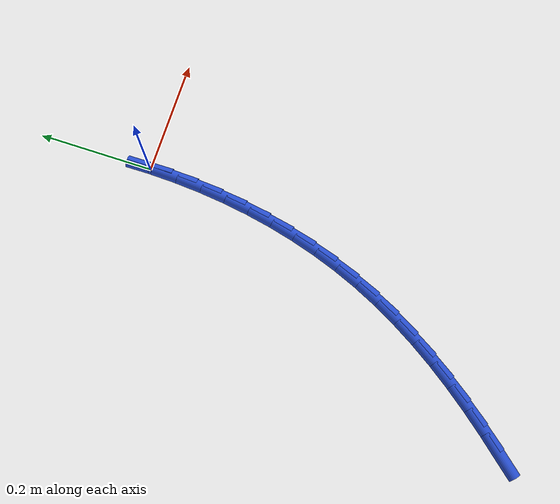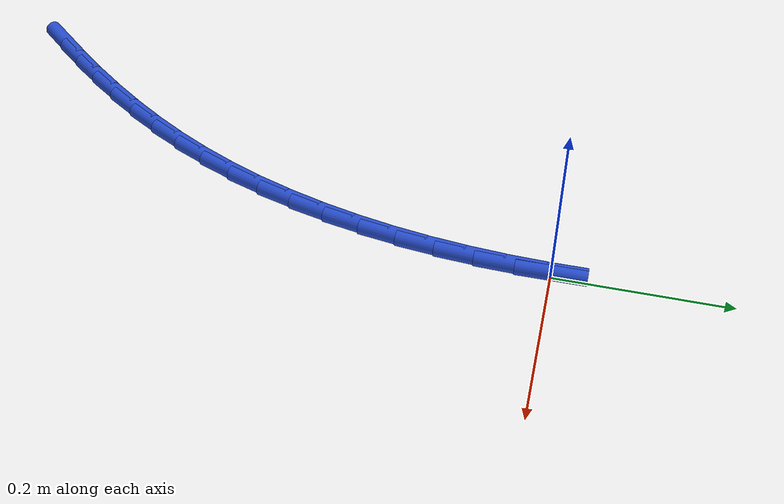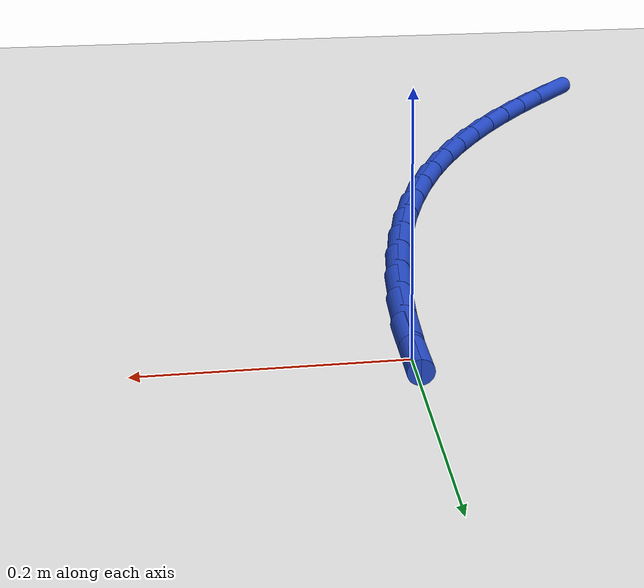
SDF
<sdf version="1.6">
 <world name="default">
  <model name="ground_plane">
   <static>1</static>
   <link name="link">
    <collision name="collision">
     <geometry><plane><normal>0 0 1</normal><size>100 100</size></plane></geometry>
     <surface><friction><ode><mu>100</mu><mu2>50</mu2></ode></friction></surface>
    </collision>
    <visual name="visual">
     <cast_shadows>0</cast_shadows>
     <geometry><plane><normal>0 0 1</normal><size>100 100</size></plane></geometry>
     <material>
      <script><uri>file://media/materials/scripts/gazebo.material</uri><name>Gazebo/WhiteGlow</name></script>
     </material>
    </visual>
   </link>
  </model>
  <model name="line">
   <link name="link_0">
    <pose>0.0 -1.5265566588595902e-16 0.01 0 1.57 -1.5642455888296136</pose>
    <collision name="collision">
     <geometry><cylinder><radius>0.01</radius><length>0.08</length></cylinder></geometry>
    </collision>
    <visual name="visual">
     <material>
      <script><name>Gazebo/Blue</name><uri>file://media/materials/scripts/gazebo.material</uri></script>
     </material>
     <geometry><cylinder><radius>0.01</radius><length>0.08</length></cylinder></geometry>
    </visual>
   </link>
   <link name="link_133">
    <pose>-0.27783959746165116 -0.6861012401727599 0.01 0 1.57 0.8540342159942773</pose>
    <collision name="collision">
     <geometry><cylinder><radius>0.01</radius><length>0.08</length></cylinder></geometry>
    </collision>
    <visual name="visual">
     <material>
      <script><name>Gazebo/Blue</name><uri>file://media/materials/scripts/gazebo.material</uri></script>
     </material>
     <geometry><cylinder><radius>0.01</radius><length>0.08</length></cylinder></geometry>
    </visual>
   </link>
   <link name="link_134">
    <pose>-0.24813306624117287 -0.6520089183360335 0.01 0 1.57 0.8821815100819124</pose>
    <collision name="collision">
     <geometry><cylinder><radius>0.01</radius><length>0.08</length></cylinder></geometry>
    </collision>
    <visual name="visual">
     <material>
      <script><name>Gazebo/Blue</name><uri>file://media/materials/scripts/gazebo.material</uri></script>
     </material>
     <geometry><cylinder><radius>0.01</radius><length>0.08</length></cylinder></geometry>
    </visual>
   </link>
   <link name="link_135">
    <pose>-0.21956404144341862 -0.6172960666490237 0.01 0 1.57 0.9140125216813902</pose>
    <collision name="collision">
     <geometry><cylinder><radius>0.01</radius><length>0.08</length></cylinder></geometry>
    </collision>
    <visual name="visual">
     <material>
      <script><name>Gazebo/Blue</name><uri>file://media/materials/scripts/gazebo.material</uri></script>
     </material>
     <geometry><cylinder><radius>0.01</radius><length>0.08</length></cylinder></geometry>
    </visual>
   </link>
   <link name="link_136">
    <pose>-0.19227535316683056 -0.5819005385605469 0.01 0 1.57 0.949613315065094</pose>
    <collision name="collision">
     <geometry><cylinder><radius>0.01</radius><length>0.08</length></cylinder></geometry>
    </collision>
    <visual name="visual">
     <material>
      <script><name>Gazebo/Blue</name><uri>file://media/materials/scripts/gazebo.material</uri></script>
     </material>
     <geometry><cylinder><radius>0.01</radius><length>0.08</length></cylinder></geometry>
    </visual>
   </link>
   <link name="link_137">
    <pose>-0.16640983150985256 -0.5457601875194211 0.01 0 1.57 0.9890408820293265</pose>
    <collision name="collision">
     <geometry><cylinder><radius>0.01</radius><length>0.08</length></cylinder></geometry>
    </collision>
    <visual name="visual">
     <material>
      <script><name>Gazebo/Blue</name><uri>file://media/materials/scripts/gazebo.material</uri></script>
     </material>
     <geometry><cylinder><radius>0.01</radius><length>0.08</length></cylinder></geometry>
    </visual>
   </link>
   <link name="link_138">
    <pose>-0.14211030657092819 -0.5088128669744647 0.01 0 1.57 1.0323071762035303</pose>
    <collision name="collision">
     <geometry><cylinder><radius>0.01</radius><length>0.08</length></cylinder></geometry>
    </collision>
    <visual name="visual">
     <material>
      <script><name>Gazebo/Blue</name><uri>file://media/materials/scripts/gazebo.material</uri></script>
     </material>
     <geometry><cylinder><radius>0.01</radius><length>0.08</length></cylinder></geometry>
    </visual>
   </link>
   <link name="link_139">
    <pose>-0.11951960844849996 -0.47099643037449423 0.01 0 1.57 1.0793613100668085</pose>
    <collision name="collision">
     <geometry><cylinder><radius>0.01</radius><length>0.08</length></cylinder></geometry>
    </collision>
    <visual name="visual">
     <material>
      <script><name>Gazebo/Blue</name><uri>file://media/materials/scripts/gazebo.material</uri></script>
     </material>
     <geometry><cylinder><radius>0.01</radius><length>0.08</length></cylinder></geometry>
    </visual>
   </link>
   <link name="link_140">
    <pose>-0.09878056724101188 -0.43224873116832824 0.01 0 1.57 1.1300328108112698</pose>
    <collision name="collision">
     <geometry><cylinder><radius>0.01</radius><length>0.08</length></cylinder></geometry>
    </collision>
    <visual name="visual">
     <material>
      <script><name>Gazebo/Blue</name><uri>file://media/materials/scripts/gazebo.material</uri></script>
     </material>
     <geometry><cylinder><radius>0.01</radius><length>0.08</length></cylinder></geometry>
    </visual>
   </link>
   <link name="link_141">
    <pose>-0.08003466491976687 -0.3925087230054291 0.01 0 1.57 1.1821446266603446</pose>
    <collision name="collision">
     <geometry><cylinder><radius>0.01</radius><length>0.08</length></cylinder></geometry>
    </collision>
    <visual name="visual">
     <material>
      <script><name>Gazebo/Blue</name><uri>file://media/materials/scripts/gazebo.material</uri></script>
     </material>
     <geometry><cylinder><radius>0.01</radius><length>0.08</length></cylinder></geometry>
    </visual>
   </link>
   <link name="link_142">
    <pose>-0.06335384865539388 -0.35177210658112656 0.01 0 1.57 1.232701775763939</pose>
    <collision name="collision">
     <geometry><cylinder><radius>0.01</radius><length>0.08</length></cylinder></geometry>
    </collision>
    <visual name="visual">
     <material>
      <script><name>Gazebo/Blue</name><uri>file://media/materials/scripts/gazebo.material</uri></script>
     </material>
     <geometry><cylinder><radius>0.01</radius><length>0.08</length></cylinder></geometry>
    </visual>
   </link>
   <link name="link_143">
    <pose>-0.048708352277341195 -0.31011759040239345 0.01 0 1.57 1.2814594889089588</pose>
    <collision name="collision">
     <geometry><cylinder><radius>0.01</radius><length>0.08</length></cylinder></geometry>
    </collision>
    <visual name="visual">
     <material>
      <script><name>Gazebo/Blue</name><uri>file://media/materials/scripts/gazebo.material</uri></script>
     </material>
     <geometry><cylinder><radius>0.01</radius><length>0.08</length></cylinder></geometry>
    </visual>
   </link>
   <link name="link_144">
    <pose>-0.03606033251837104 -0.2676304746593808 0.01 0 1.57 1.3284364010290335</pose>
    <collision name="collision">
     <geometry><cylinder><radius>0.01</radius><length>0.08</length></cylinder></geometry>
    </collision>
    <visual name="visual">
     <material>
      <script><name>Gazebo/Blue</name><uri>file://media/materials/scripts/gazebo.material</uri></script>
     </material>
     <geometry><cylinder><radius>0.01</radius><length>0.08</length></cylinder></geometry>
    </visual>
   </link>
   <link name="link_145">
    <pose>-0.02537194611124655 -0.2243960595422428 0.01 0 1.57 1.373678677381472</pose>
    <collision name="collision">
     <geometry><cylinder><radius>0.01</radius><length>0.08</length></cylinder></geometry>
    </collision>
    <visual name="visual">
     <material>
      <script><name>Gazebo/Blue</name><uri>file://media/materials/scripts/gazebo.material</uri></script>
     </material>
     <geometry><cylinder><radius>0.01</radius><length>0.08</length></cylinder></geometry>
    </visual>
   </link>
   <link name="link_146">
    <pose>-0.01660534978873006 -0.18049964524113066 0.01 0 1.57 1.4172546132632038</pose>
    <collision name="collision">
     <geometry><cylinder><radius>0.01</radius><length>0.08</length></cylinder></geometry>
    </collision>
    <visual name="visual">
     <material>
      <script><name>Gazebo/Blue</name><uri>file://media/materials/scripts/gazebo.material</uri></script>
     </material>
     <geometry><cylinder><radius>0.01</radius><length>0.08</length></cylinder></geometry>
    </visual>
   </link>
   <link name="link_147">
    <pose>-0.009722700283584455 -0.13602653194619752 0.01 0 1.57 1.4592497081522446</pose>
    <collision name="collision">
     <geometry><cylinder><radius>0.01</radius><length>0.08</length></cylinder></geometry>
    </collision>
    <visual name="visual">
     <material>
      <script><name>Gazebo/Blue</name><uri>file://media/materials/scripts/gazebo.material</uri></script>
     </material>
     <geometry><cylinder><radius>0.01</radius><length>0.08</length></cylinder></geometry>
    </visual>
   </link>
   <link name="link_148">
    <pose>-0.004686154328572513 -0.09106201984759685 0.01 0 1.57 1.4997623687349844</pose>
    <collision name="collision">
     <geometry><cylinder><radius>0.01</radius><length>0.08</length></cylinder></geometry>
    </collision>
    <visual name="visual">
     <material>
      <script><name>Gazebo/Blue</name><uri>file://media/materials/scripts/gazebo.material</uri></script>
     </material>
     <geometry><cylinder><radius>0.01</radius><length>0.08</length></cylinder></geometry>
    </visual>
   </link>
   <link name="link_149">
    <pose>-0.0014578686564567615 -0.04569140913547969 0.01 0 1.57 1.538900303890652</pose>
    <collision name="collision">
     <geometry><cylinder><radius>0.01</radius><length>0.08</length></cylinder></geometry>
    </collision>
    <visual name="visual">
     <material>
      <script><name>Gazebo/Blue</name><uri>file://media/materials/scripts/gazebo.material</uri></script>
     </material>
     <geometry><cylinder><radius>0.01</radius><length>0.08</length></cylinder></geometry>
    </visual>
   </link>
   <link name="link_150">
    <pose>-5.204170427930421e-18 -1.6653345369377348e-16 0.01 0 1.57 -1.564815044105304</pose>
    <collision name="collision">
     <geometry><cylinder><radius>0.01</radius><length>0.08</length></cylinder></geometry>
    </collision>
    <visual name="visual">
     <material>
      <script><name>Gazebo/Blue</name><uri>file://media/materials/scripts/gazebo.material</uri></script>
     </material>
     <geometry><cylinder><radius>0.01</radius><length>0.08</length></cylinder></geometry>
    </visual>
   </link>
  </model>
 </world>
</sdf>
